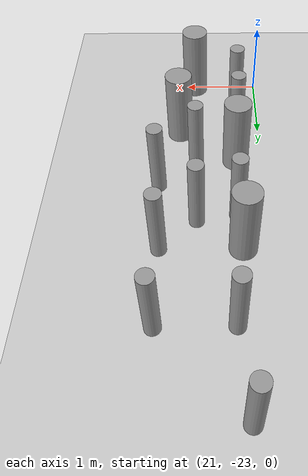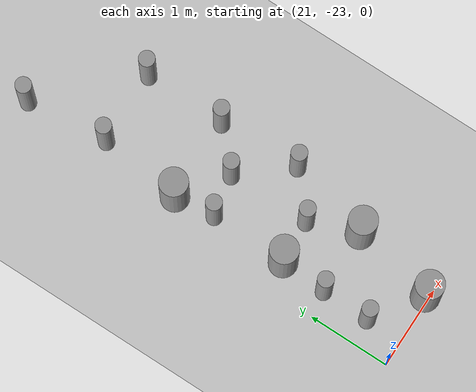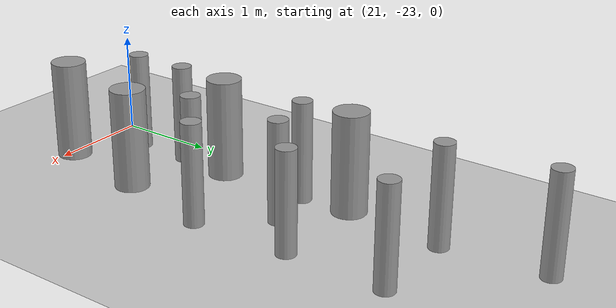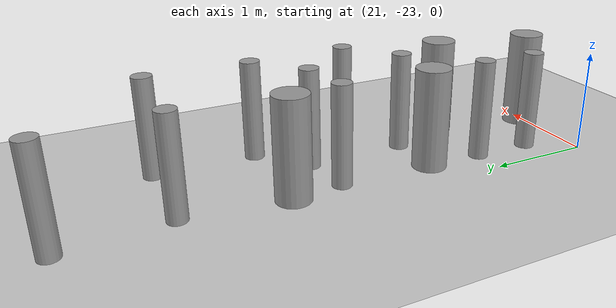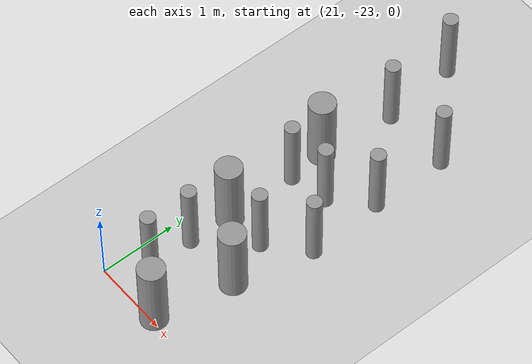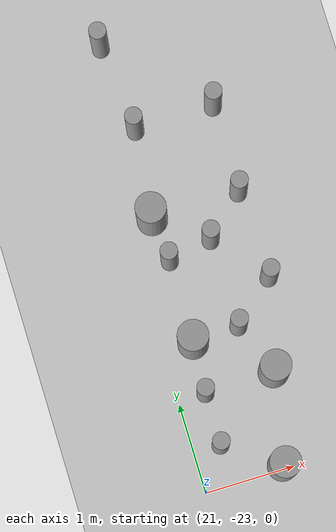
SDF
<sdf version="1.6">
 <world name="default">
  <model name="ground_plane">
   <static>1</static>
   <link name="link">
    <collision name="collision">
     <geometry><plane><normal>0 0 1</normal><size>100 100</size></plane></geometry>
     <surface><friction><ode><mu>100</mu><mu2>50</mu2></ode></friction></surface>
    </collision>
    <visual name="visual">
     <cast_shadows>0</cast_shadows>
     <geometry><plane><normal>0 0 1</normal><size>100 100</size></plane></geometry>
     <material>
      <script><uri>file://media/materials/scripts/gazebo.material</uri><name>Gazebo/Grey</name></script>
     </material>
    </visual>
   </link>
  </model>
  <model name="cyl_wall_clone_clone_1_clone_1_clone_clone_clone_clone_1">
   <link name="link_0">
    <pose>-2.73893 -0.366465 0 0 -0 0</pose>
    <inertial>
     <mass>0.0374993</mass>
     <inertia>
      <ixx>0.00321281</ixx>
      <ixy>0</ixy>
      <ixz>0</ixz>
      <iyy>0.00321281</iyy>
      <iyz>0</iyz>
      <izz>0.000175774</izz>
     </inertia>
    </inertial>
    <visual name="visual">
     <geometry><cylinder><radius>0.0968661</radius><length>1</length></cylinder></geometry>
     <material>
      <lighting>1</lighting>
      <script><uri>file://media/materials/scripts/gazebo.material</uri><name>Gazebo/Grey</name></script>
      <ambient>0.3 0.3 0.3 1</ambient>
      <diffuse>0.7 0.7 0.7 1</diffuse>
      <specular>0.01 0.01 0.01 1</specular>
      <emissive>0 0 0 1</emissive>
     </material>
    </visual>
    <collision name="collision">
     <geometry><cylinder><radius>0.096866</radius><length>1</length></cylinder></geometry>
     <surface>
      <friction>
       <ode><mu>1</mu><mu2>1</mu2><fdir1>0 0 0</fdir1><slip1>0</slip1><slip2>0</slip2></ode>
       <torsional>
        <coefficient>1</coefficient>
        <patch_radius>0</patch_radius>
        <surface_radius>0</surface_radius>
        <use_patch_radius>1</use_patch_radius>
        <ode><slip>0</slip></ode>
       </torsional>
      </friction>
      <bounce><restitution_coefficient>0</restitution_coefficient><threshold>1e+06</threshold></bounce>
      <contact>
       <collide_without_contact>0</collide_without_contact>
       <collide_without_contact_bitmask>1</collide_without_contact_bitmask>
       <collide_bitmask>1</collide_bitmask>
       <ode>
        <soft_cfm>0</soft_cfm>
        <soft_erp>0.2</soft_erp>
        <kp>1e+13</kp>
        <kd>1</kd>
        <max_vel>0.01</max_vel>
        <min_depth>0</min_depth>
       </ode>
       <bullet>
        <split_impulse>1</split_impulse>
        <split_impulse_penetration_threshold>-0.01</split_impulse_penetration_threshold>
        <soft_cfm>0</soft_cfm>
        <soft_erp>0.2</soft_erp>
        <kp>1e+13</kp>
        <kd>1</kd>
       </bullet>
      </contact>
     </surface>
    </collision>
   </link>
   <link name="link_0_clone">
    <pose>-1.73893 0.61877 0 0 -0 0</pose>
    <inertial>
     <mass>0.0374993</mass>
     <inertia>
      <ixx>0.00321281</ixx>
      <ixy>0</ixy>
      <ixz>0</ixz>
      <iyy>0.00321281</iyy>
      <iyz>0</iyz>
      <izz>0.000175774</izz>
     </inertia>
    </inertial>
    <visual name="visual">
     <geometry><cylinder><radius>0.0968661</radius><length>1</length></cylinder></geometry>
     <material>
      <lighting>1</lighting>
      <script><uri>file://media/materials/scripts/gazebo.material</uri><name>Gazebo/Grey</name></script>
      <ambient>0.3 0.3 0.3 1</ambient>
      <diffuse>0.7 0.7 0.7 1</diffuse>
      <specular>0.01 0.01 0.01 1</specular>
      <emissive>0 0 0 1</emissive>
      <shader type="pixel"/>
     </material>
    </visual>
    <collision name="collision">
     <geometry><cylinder><radius>0.096866</radius><length>1</length></cylinder></geometry>
     <surface>
      <friction>
       <ode><mu>1</mu><mu2>1</mu2><fdir1>0 0 0</fdir1><slip1>0</slip1><slip2>0</slip2></ode>
       <torsional>
        <coefficient>1</coefficient>
        <patch_radius>0</patch_radius>
        <surface_radius>0</surface_radius>
        <use_patch_radius>1</use_patch_radius>
        <ode><slip>0</slip></ode>
       </torsional>
      </friction>
      <bounce><restitution_coefficient>0</restitution_coefficient><threshold>1e+06</threshold></bounce>
      <contact>
       <collide_without_contact>0</collide_without_contact>
       <collide_without_contact_bitmask>1</collide_without_contact_bitmask>
       <collide_bitmask>1</collide_bitmask>
       <ode>
        <soft_cfm>0</soft_cfm>
        <soft_erp>0.2</soft_erp>
        <kp>1e+13</kp>
        <kd>1</kd>
        <max_vel>0.01</max_vel>
        <min_depth>0</min_depth>
       </ode>
       <bullet>
        <split_impulse>1</split_impulse>
        <split_impulse_penetration_threshold>-0.01</split_impulse_penetration_threshold>
        <soft_cfm>0</soft_cfm>
        <soft_erp>0.2</soft_erp>
        <kp>1e+13</kp>
        <kd>1</kd>
       </bullet>
      </contact>
     </surface>
    </collision>
   </link>
   <link name="link_0_clone_clone">
    <pose>-0.327073 0.143919 0 0 -0 0</pose>
    <inertial>
     <mass>0.0374993</mass>
     <inertia>
      <ixx>0.00321281</ixx>
      <ixy>0</ixy>
      <ixz>0</ixz>
      <iyy>0.00321281</iyy>
      <iyz>0</iyz>
      <izz>0.000175774</izz>
     </inertia>
    </inertial>
    <visual name="visual">
     <geometry><cylinder><radius>0.0968661</radius><length>1</length></cylinder></geometry>
     <material>
      <lighting>1</lighting>
      <script><uri>file://media/materials/scripts/gazebo.material</uri><name>Gazebo/Grey</name></script>
      <ambient>0.3 0.3 0.3 1</ambient>
      <diffuse>0.7 0.7 0.7 1</diffuse>
      <specular>0.01 0.01 0.01 1</specular>
      <emissive>0 0 0 1</emissive>
      <shader type="pixel"/>
     </material>
    </visual>
    <collision name="collision">
     <geometry><cylinder><radius>0.096866</radius><length>1</length></cylinder></geometry>
     <surface>
      <friction>
       <ode><mu>1</mu><mu2>1</mu2><fdir1>0 0 0</fdir1><slip1>0</slip1><slip2>0</slip2></ode>
       <torsional>
        <coefficient>1</coefficient>
        <patch_radius>0</patch_radius>
        <surface_radius>0</surface_radius>
        <use_patch_radius>1</use_patch_radius>
        <ode><slip>0</slip></ode>
       </torsional>
      </friction>
      <bounce><restitution_coefficient>0</restitution_coefficient><threshold>1e+06</threshold></bounce>
      <contact>
       <collide_without_contact>0</collide_without_contact>
       <collide_without_contact_bitmask>1</collide_without_contact_bitmask>
       <collide_bitmask>1</collide_bitmask>
       <ode>
        <soft_cfm>0</soft_cfm>
        <soft_erp>0.2</soft_erp>
        <kp>1e+13</kp>
        <kd>1</kd>
        <max_vel>0.01</max_vel>
        <min_depth>0</min_depth>
       </ode>
       <bullet>
        <split_impulse>1</split_impulse>
        <split_impulse_penetration_threshold>-0.01</split_impulse_penetration_threshold>
        <soft_cfm>0</soft_cfm>
        <soft_erp>0.2</soft_erp>
        <kp>1e+13</kp>
        <kd>1</kd>
       </bullet>
      </contact>
     </surface>
    </collision>
   </link>
   <link name="link_0_clone_clone_0">
    <pose>1.26107 -0.419359 0 0 -0 0</pose>
    <inertial>
     <mass>0.0374993</mass>
     <inertia>
      <ixx>0.00321281</ixx>
      <ixy>0</ixy>
      <ixz>0</ixz>
      <iyy>0.00321281</iyy>
      <iyz>0</iyz>
      <izz>0.000175774</izz>
     </inertia>
    </inertial>
    <visual name="visual">
     <geometry><cylinder><radius>0.0968661</radius><length>1</length></cylinder></geometry>
     <material>
      <lighting>1</lighting>
      <script><uri>file://media/materials/scripts/gazebo.material</uri><name>Gazebo/Grey</name></script>
      <ambient>0.3 0.3 0.3 1</ambient>
      <diffuse>0.7 0.7 0.7 1</diffuse>
      <specular>0.01 0.01 0.01 1</specular>
      <emissive>0 0 0 1</emissive>
      <shader type="pixel"/>
     </material>
    </visual>
    <collision name="collision">
     <geometry><cylinder><radius>0.096866</radius><length>1</length></cylinder></geometry>
     <surface>
      <friction>
       <ode><mu>1</mu><mu2>1</mu2><fdir1>0 0 0</fdir1><slip1>0</slip1><slip2>0</slip2></ode>
       <torsional>
        <coefficient>1</coefficient>
        <patch_radius>0</patch_radius>
        <surface_radius>0</surface_radius>
        <use_patch_radius>1</use_patch_radius>
        <ode><slip>0</slip></ode>
       </torsional>
      </friction>
      <bounce><restitution_coefficient>0</restitution_coefficient><threshold>1e+06</threshold></bounce>
      <contact>
       <collide_without_contact>0</collide_without_contact>
       <collide_without_contact_bitmask>1</collide_without_contact_bitmask>
       <collide_bitmask>1</collide_bitmask>
       <ode>
        <soft_cfm>0</soft_cfm>
        <soft_erp>0.2</soft_erp>
        <kp>1e+13</kp>
        <kd>1</kd>
        <max_vel>0.01</max_vel>
        <min_depth>0</min_depth>
       </ode>
       <bullet>
        <split_impulse>1</split_impulse>
        <split_impulse_penetration_threshold>-0.01</split_impulse_penetration_threshold>
        <soft_cfm>0</soft_cfm>
        <soft_erp>0.2</soft_erp>
        <kp>1e+13</kp>
        <kd>1</kd>
       </bullet>
      </contact>
     </surface>
    </collision>
   </link>
   <link name="link_0_clone_clone_1">
    <pose>-1.73893 -0.277168 0 0 -0 0</pose>
    <inertial>
     <mass>0.0374993</mass>
     <inertia>
      <ixx>0.00321281</ixx>
      <ixy>0</ixy>
      <ixz>0</ixz>
      <iyy>0.00321281</iyy>
      <iyz>0</iyz>
      <izz>0.000175774</izz>
     </inertia>
    </inertial>
    <visual name="visual">
     <geometry><cylinder><radius>0.0968661</radius><length>1</length></cylinder></geometry>
     <material>
      <lighting>1</lighting>
      <script><uri>file://media/materials/scripts/gazebo.material</uri><name>Gazebo/Grey</name></script>
      <ambient>0.3 0.3 0.3 1</ambient>
      <diffuse>0.7 0.7 0.7 1</diffuse>
      <specular>0.01 0.01 0.01 1</specular>
      <emissive>0 0 0 1</emissive>
      <shader type="pixel"/>
     </material>
    </visual>
    <collision name="collision">
     <geometry><cylinder><radius>0.096866</radius><length>1</length></cylinder></geometry>
     <surface>
      <friction>
       <ode><mu>1</mu><mu2>1</mu2><fdir1>0 0 0</fdir1><slip1>0</slip1><slip2>0</slip2></ode>
       <torsional>
        <coefficient>1</coefficient>
        <patch_radius>0</patch_radius>
        <surface_radius>0</surface_radius>
        <use_patch_radius>1</use_patch_radius>
        <ode><slip>0</slip></ode>
       </torsional>
      </friction>
      <bounce><restitution_coefficient>0</restitution_coefficient><threshold>1e+06</threshold></bounce>
      <contact>
       <collide_without_contact>0</collide_without_contact>
       <collide_without_contact_bitmask>1</collide_without_contact_bitmask>
       <collide_bitmask>1</collide_bitmask>
       <ode>
        <soft_cfm>0</soft_cfm>
        <soft_erp>0.2</soft_erp>
        <kp>1e+13</kp>
        <kd>1</kd>
        <max_vel>0.01</max_vel>
        <min_depth>0</min_depth>
       </ode>
       <bullet>
        <split_impulse>1</split_impulse>
        <split_impulse_penetration_threshold>-0.01</split_impulse_penetration_threshold>
        <soft_cfm>0</soft_cfm>
        <soft_erp>0.2</soft_erp>
        <kp>1e+13</kp>
        <kd>1</kd>
       </bullet>
      </contact>
     </surface>
    </collision>
   </link>
   <link name="link_0_clone_clone_2">
    <pose>-0.738934 0.593961 0 0 -0 0</pose>
    <inertial>
     <mass>0.0374993</mass>
     <inertia>
      <ixx>0.00321281</ixx>
      <ixy>0</ixy>
      <ixz>0</ixz>
      <iyy>0.00321281</iyy>
      <iyz>0</iyz>
      <izz>0.000175774</izz>
     </inertia>
    </inertial>
    <visual name="visual">
     <geometry><cylinder><radius>0.0968661</radius><length>1</length></cylinder></geometry>
     <material>
      <lighting>1</lighting>
      <script><uri>file://media/materials/scripts/gazebo.material</uri><name>Gazebo/Grey</name></script>
      <ambient>0.3 0.3 0.3 1</ambient>
      <diffuse>0.7 0.7 0.7 1</diffuse>
      <specular>0.01 0.01 0.01 1</specular>
      <emissive>0 0 0 1</emissive>
      <shader type="pixel"/>
     </material>
    </visual>
    <collision name="collision">
     <geometry><cylinder><radius>0.096866</radius><length>1</length></cylinder></geometry>
     <surface>
      <friction>
       <ode><mu>1</mu><mu2>1</mu2><fdir1>0 0 0</fdir1><slip1>0</slip1><slip2>0</slip2></ode>
       <torsional>
        <coefficient>1</coefficient>
        <patch_radius>0</patch_radius>
        <surface_radius>0</surface_radius>
        <use_patch_radius>1</use_patch_radius>
        <ode><slip>0</slip></ode>
       </torsional>
      </friction>
      <bounce><restitution_coefficient>0</restitution_coefficient><threshold>1e+06</threshold></bounce>
      <contact>
       <collide_without_contact>0</collide_without_contact>
       <collide_without_contact_bitmask>1</collide_without_contact_bitmask>
       <collide_bitmask>1</collide_bitmask>
       <ode>
        <soft_cfm>0</soft_cfm>
        <soft_erp>0.2</soft_erp>
        <kp>1e+13</kp>
        <kd>1</kd>
        <max_vel>0.01</max_vel>
        <min_depth>0</min_depth>
       </ode>
       <bullet>
        <split_impulse>1</split_impulse>
        <split_impulse_penetration_threshold>-0.01</split_impulse_penetration_threshold>
        <soft_cfm>0</soft_cfm>
        <soft_erp>0.2</soft_erp>
        <kp>1e+13</kp>
        <kd>1</kd>
       </bullet>
      </contact>
     </surface>
    </collision>
   </link>
   <link name="link_0_clone_clone_3">
    <pose>0.261066 0.624849 0 0 -0 0</pose>
    <inertial>
     <mass>0.0374993</mass>
     <inertia>
      <ixx>0.00321281</ixx>
      <ixy>0</ixy>
      <ixz>0</ixz>
      <iyy>0.00321281</iyy>
      <iyz>0</iyz>
      <izz>0.000175774</izz>
     </inertia>
    </inertial>
    <visual name="visual">
     <geometry><cylinder><radius>0.0968661</radius><length>1</length></cylinder></geometry>
     <material>
      <lighting>1</lighting>
      <script><uri>file://media/materials/scripts/gazebo.material</uri><name>Gazebo/Grey</name></script>
      <ambient>0.3 0.3 0.3 1</ambient>
      <diffuse>0.7 0.7 0.7 1</diffuse>
      <specular>0.01 0.01 0.01 1</specular>
      <emissive>0 0 0 1</emissive>
      <shader type="pixel"/>
     </material>
    </visual>
    <collision name="collision">
     <geometry><cylinder><radius>0.096866</radius><length>1</length></cylinder></geometry>
     <surface>
      <friction>
       <ode><mu>1</mu><mu2>1</mu2><fdir1>0 0 0</fdir1><slip1>0</slip1><slip2>0</slip2></ode>
       <torsional>
        <coefficient>1</coefficient>
        <patch_radius>0</patch_radius>
        <surface_radius>0</surface_radius>
        <use_patch_radius>1</use_patch_radius>
        <ode><slip>0</slip></ode>
       </torsional>
      </friction>
      <bounce><restitution_coefficient>0</restitution_coefficient><threshold>1e+06</threshold></bounce>
      <contact>
       <collide_without_contact>0</collide_without_contact>
       <collide_without_contact_bitmask>1</collide_without_contact_bitmask>
       <collide_bitmask>1</collide_bitmask>
       <ode>
        <soft_cfm>0</soft_cfm>
        <soft_erp>0.2</soft_erp>
        <kp>1e+13</kp>
        <kd>1</kd>
        <max_vel>0.01</max_vel>
        <min_depth>0</min_depth>
       </ode>
       <bullet>
        <split_impulse>1</split_impulse>
        <split_impulse_penetration_threshold>-0.01</split_impulse_penetration_threshold>
        <soft_cfm>0</soft_cfm>
        <soft_erp>0.2</soft_erp>
        <kp>1e+13</kp>
        <kd>1</kd>
       </bullet>
      </contact>
     </surface>
    </collision>
   </link>
   <link name="link_0_clone_clone_4">
    <pose>-0.239049 -0.353105 0 0 -0 0</pose>
    <inertial>
     <mass>0.0374993</mass>
     <inertia>
      <ixx>0.00321281</ixx>
      <ixy>0</ixy>
      <ixz>0</ixz>
      <iyy>0.00321281</iyy>
      <iyz>0</iyz>
      <izz>0.000175774</izz>
     </inertia>
    </inertial>
    <visual name="visual">
     <geometry><cylinder><radius>0.0968661</radius><length>1</length></cylinder></geometry>
     <material>
      <lighting>1</lighting>
      <script><uri>file://media/materials/scripts/gazebo.material</uri><name>Gazebo/Grey</name></script>
      <ambient>0.3 0.3 0.3 1</ambient>
      <diffuse>0.7 0.7 0.7 1</diffuse>
      <specular>0.01 0.01 0.01 1</specular>
      <emissive>0 0 0 1</emissive>
      <shader type="pixel"/>
     </material>
    </visual>
    <collision name="collision">
     <geometry><cylinder><radius>0.096866</radius><length>1</length></cylinder></geometry>
     <surface>
      <friction>
       <ode><mu>1</mu><mu2>1</mu2><fdir1>0 0 0</fdir1><slip1>0</slip1><slip2>0</slip2></ode>
       <torsional>
        <coefficient>1</coefficient>
        <patch_radius>0</patch_radius>
        <surface_radius>0</surface_radius>
        <use_patch_radius>1</use_patch_radius>
        <ode><slip>0</slip></ode>
       </torsional>
      </friction>
      <bounce><restitution_coefficient>0</restitution_coefficient><threshold>1e+06</threshold></bounce>
      <contact>
       <collide_without_contact>0</collide_without_contact>
       <collide_without_contact_bitmask>1</collide_without_contact_bitmask>
       <collide_bitmask>1</collide_bitmask>
       <ode>
        <soft_cfm>0</soft_cfm>
        <soft_erp>0.2</soft_erp>
        <kp>1e+13</kp>
        <kd>1</kd>
        <max_vel>0.01</max_vel>
        <min_depth>0</min_depth>
       </ode>
       <bullet>
        <split_impulse>1</split_impulse>
        <split_impulse_penetration_threshold>-0.01</split_impulse_penetration_threshold>
        <soft_cfm>0</soft_cfm>
        <soft_erp>0.2</soft_erp>
        <kp>1e+13</kp>
        <kd>1</kd>
       </bullet>
      </contact>
     </surface>
    </collision>
   </link>
   <link name="link_0_clone_clone_5">
    <pose>0.672792 0.143919 0 0 -0 0</pose>
    <inertial>
     <mass>0.0374993</mass>
     <inertia>
      <ixx>0.00321281</ixx>
      <ixy>0</ixy>
      <ixz>0</ixz>
      <iyy>0.00321281</iyy>
      <iyz>0</iyz>
      <izz>0.000175774</izz>
     </inertia>
    </inertial>
    <visual name="visual">
     <geometry><cylinder><radius>0.0968661</radius><length>1</length></cylinder></geometry>
     <material>
      <lighting>1</lighting>
      <script><uri>file://media/materials/scripts/gazebo.material</uri><name>Gazebo/Grey</name></script>
      <ambient>0.3 0.3 0.3 1</ambient>
      <diffuse>0.7 0.7 0.7 1</diffuse>
      <specular>0.01 0.01 0.01 1</specular>
      <emissive>0 0 0 1</emissive>
      <shader type="pixel"/>
     </material>
    </visual>
    <collision name="collision">
     <geometry><cylinder><radius>0.096866</radius><length>1</length></cylinder></geometry>
     <surface>
      <friction>
       <ode><mu>1</mu><mu2>1</mu2><fdir1>0 0 0</fdir1><slip1>0</slip1><slip2>0</slip2></ode>
       <torsional>
        <coefficient>1</coefficient>
        <patch_radius>0</patch_radius>
        <surface_radius>0</surface_radius>
        <use_patch_radius>1</use_patch_radius>
        <ode><slip>0</slip></ode>
       </torsional>
      </friction>
      <bounce><restitution_coefficient>0</restitution_coefficient><threshold>1e+06</threshold></bounce>
      <contact>
       <collide_without_contact>0</collide_without_contact>
       <collide_without_contact_bitmask>1</collide_without_contact_bitmask>
       <collide_bitmask>1</collide_bitmask>
       <ode>
        <soft_cfm>0</soft_cfm>
        <soft_erp>0.2</soft_erp>
        <kp>1e+13</kp>
        <kd>1</kd>
        <max_vel>0.01</max_vel>
        <min_depth>0</min_depth>
       </ode>
       <bullet>
        <split_impulse>1</split_impulse>
        <split_impulse_penetration_threshold>-0.01</split_impulse_penetration_threshold>
        <soft_cfm>0</soft_cfm>
        <soft_erp>0.2</soft_erp>
        <kp>1e+13</kp>
        <kd>1</kd>
       </bullet>
      </contact>
     </surface>
    </collision>
   </link>
   <link name="link_0_clone_clone_6">
    <pose>1.84596 -0.433423 0 0 -0 0</pose>
    <inertial>
     <mass>0.0374993</mass>
     <inertia>
      <ixx>0.00321281</ixx>
      <ixy>0</ixy>
      <ixz>0</ixz>
      <iyy>0.00321281</iyy>
      <iyz>0</iyz>
      <izz>0.000175774</izz>
     </inertia>
    </inertial>
    <visual name="visual">
     <geometry><cylinder><radius>0.0968661</radius><length>1</length></cylinder></geometry>
     <material>
      <lighting>1</lighting>
      <script><uri>file://media/materials/scripts/gazebo.material</uri><name>Gazebo/Grey</name></script>
      <ambient>0.3 0.3 0.3 1</ambient>
      <diffuse>0.7 0.7 0.7 1</diffuse>
      <specular>0.01 0.01 0.01 1</specular>
      <emissive>0 0 0 1</emissive>
      <shader type="pixel"/>
     </material>
    </visual>
    <collision name="collision">
     <geometry><cylinder><radius>0.096866</radius><length>1</length></cylinder></geometry>
     <surface>
      <friction>
       <ode><mu>1</mu><mu2>1</mu2><fdir1>0 0 0</fdir1><slip1>0</slip1><slip2>0</slip2></ode>
       <torsional>
        <coefficient>1</coefficient>
        <patch_radius>0</patch_radius>
        <surface_radius>0</surface_radius>
        <use_patch_radius>1</use_patch_radius>
        <ode><slip>0</slip></ode>
       </torsional>
      </friction>
      <bounce><restitution_coefficient>0</restitution_coefficient><threshold>1e+06</threshold></bounce>
      <contact>
       <collide_without_contact>0</collide_without_contact>
       <collide_without_contact_bitmask>1</collide_without_contact_bitmask>
       <collide_bitmask>1</collide_bitmask>
       <ode>
        <soft_cfm>0</soft_cfm>
        <soft_erp>0.2</soft_erp>
        <kp>1e+13</kp>
        <kd>1</kd>
        <max_vel>0.01</max_vel>
        <min_depth>0</min_depth>
       </ode>
       <bullet>
        <split_impulse>1</split_impulse>
        <split_impulse_penetration_threshold>-0.01</split_impulse_penetration_threshold>
        <soft_cfm>0</soft_cfm>
        <soft_erp>0.2</soft_erp>
        <kp>1e+13</kp>
        <kd>1</kd>
       </bullet>
      </contact>
     </surface>
    </collision>
   </link>
   <link name="link_1">
    <pose>-0.738934 -0.397931 0 0 -0 0</pose>
    <inertial>
     <mass>0.117398</mass>
     <inertia>
      <ixx>0.0106445</ixx>
      <ixy>0</ixy>
      <ixz>0</ixz>
      <iyy>0.0106445</iyy>
      <iyz>0</iyz>
      <izz>0.00172278</izz>
     </inertia>
    </inertial>
    <visual name="visual">
     <geometry><cylinder><radius>0.171317</radius><length>1</length></cylinder></geometry>
     <material>
      <lighting>1</lighting>
      <script><uri>file://media/materials/scripts/gazebo.material</uri><name>Gazebo/Grey</name></script>
      <ambient>0.3 0.3 0.3 1</ambient>
      <diffuse>0.7 0.7 0.7 1</diffuse>
      <specular>0.01 0.01 0.01 1</specular>
      <emissive>0 0 0 1</emissive>
     </material>
    </visual>
    <collision name="collision">
     <geometry><cylinder><radius>0.171317</radius><length>1</length></cylinder></geometry>
     <surface>
      <friction>
       <ode><mu>1</mu><mu2>1</mu2><fdir1>0 0 0</fdir1><slip1>0</slip1><slip2>0</slip2></ode>
       <torsional>
        <coefficient>1</coefficient>
        <patch_radius>0</patch_radius>
        <surface_radius>0</surface_radius>
        <use_patch_radius>1</use_patch_radius>
        <ode><slip>0</slip></ode>
       </torsional>
      </friction>
      <bounce><restitution_coefficient>0</restitution_coefficient><threshold>1e+06</threshold></bounce>
      <contact>
       <collide_without_contact>0</collide_without_contact>
       <collide_without_contact_bitmask>1</collide_without_contact_bitmask>
       <collide_bitmask>1</collide_bitmask>
       <ode>
        <soft_cfm>0</soft_cfm>
        <soft_erp>0.2</soft_erp>
        <kp>1e+13</kp>
        <kd>1</kd>
        <max_vel>0.01</max_vel>
        <min_depth>0</min_depth>
       </ode>
       <bullet>
        <split_impulse>1</split_impulse>
        <split_impulse_penetration_threshold>-0.01</split_impulse_penetration_threshold>
        <soft_cfm>0</soft_cfm>
        <soft_erp>0.2</soft_erp>
        <kp>1e+13</kp>
        <kd>1</kd>
       </bullet>
      </contact>
     </surface>
    </collision>
   </link>
   <link name="link_1_clone">
    <pose>0.697784 -0.380861 0 0 -0 0</pose>
    <inertial>
     <mass>0.117398</mass>
     <inertia>
      <ixx>0.0106445</ixx>
      <ixy>0</ixy>
      <ixz>0</ixz>
      <iyy>0.0106445</iyy>
      <iyz>0</iyz>
      <izz>0.00172278</izz>
     </inertia>
    </inertial>
    <visual name="visual">
     <geometry><cylinder><radius>0.171317</radius><length>1</length></cylinder></geometry>
     <material>
      <lighting>1</lighting>
      <script><uri>file://media/materials/scripts/gazebo.material</uri><name>Gazebo/Grey</name></script>
      <ambient>0.3 0.3 0.3 1</ambient>
      <diffuse>0.7 0.7 0.7 1</diffuse>
      <specular>0.01 0.01 0.01 1</specular>
      <emissive>0 0 0 1</emissive>
      <shader type="pixel"/>
     </material>
    </visual>
    <collision name="collision">
     <geometry><cylinder><radius>0.171317</radius><length>1</length></cylinder></geometry>
     <surface>
      <friction>
       <ode><mu>1</mu><mu2>1</mu2><fdir1>0 0 0</fdir1><slip1>0</slip1><slip2>0</slip2></ode>
       <torsional>
        <coefficient>1</coefficient>
        <patch_radius>0</patch_radius>
        <surface_radius>0</surface_radius>
        <use_patch_radius>1</use_patch_radius>
        <ode><slip>0</slip></ode>
       </torsional>
      </friction>
      <bounce><restitution_coefficient>0</restitution_coefficient><threshold>1e+06</threshold></bounce>
      <contact>
       <collide_without_contact>0</collide_without_contact>
       <collide_without_contact_bitmask>1</collide_without_contact_bitmask>
       <collide_bitmask>1</collide_bitmask>
       <ode>
        <soft_cfm>0</soft_cfm>
        <soft_erp>0.2</soft_erp>
        <kp>1e+13</kp>
        <kd>1</kd>
        <max_vel>0.01</max_vel>
        <min_depth>0</min_depth>
       </ode>
       <bullet>
        <split_impulse>1</split_impulse>
        <split_impulse_penetration_threshold>-0.01</split_impulse_penetration_threshold>
        <soft_cfm>0</soft_cfm>
        <soft_erp>0.2</soft_erp>
        <kp>1e+13</kp>
        <kd>1</kd>
       </bullet>
      </contact>
     </surface>
    </collision>
   </link>
   <link name="link_1_clone_0">
    <pose>1.26107 0.358974 0 0 -0 0</pose>
    <inertial>
     <mass>0.117398</mass>
     <inertia>
      <ixx>0.0106445</ixx>
      <ixy>0</ixy>
      <ixz>0</ixz>
      <iyy>0.0106445</iyy>
      <iyz>0</iyz>
      <izz>0.00172278</izz>
     </inertia>
    </inertial>
    <visual name="visual">
     <geometry><cylinder><radius>0.171317</radius><length>1</length></cylinder></geometry>
     <material>
      <lighting>1</lighting>
      <script><uri>file://media/materials/scripts/gazebo.material</uri><name>Gazebo/Grey</name></script>
      <ambient>0.3 0.3 0.3 1</ambient>
      <diffuse>0.7 0.7 0.7 1</diffuse>
      <specular>0.01 0.01 0.01 1</specular>
      <emissive>0 0 0 1</emissive>
      <shader type="pixel"/>
     </material>
    </visual>
    <collision name="collision">
     <geometry><cylinder><radius>0.171317</radius><length>1</length></cylinder></geometry>
     <surface>
      <friction>
       <ode><mu>1</mu><mu2>1</mu2><fdir1>0 0 0</fdir1><slip1>0</slip1><slip2>0</slip2></ode>
       <torsional>
        <coefficient>1</coefficient>
        <patch_radius>0</patch_radius>
        <surface_radius>0</surface_radius>
        <use_patch_radius>1</use_patch_radius>
        <ode><slip>0</slip></ode>
       </torsional>
      </friction>
      <bounce><restitution_coefficient>0</restitution_coefficient><threshold>1e+06</threshold></bounce>
      <contact>
       <collide_without_contact>0</collide_without_contact>
       <collide_without_contact_bitmask>1</collide_without_contact_bitmask>
       <collide_bitmask>1</collide_bitmask>
       <ode>
        <soft_cfm>0</soft_cfm>
        <soft_erp>0.2</soft_erp>
        <kp>1e+13</kp>
        <kd>1</kd>
        <max_vel>0.01</max_vel>
        <min_depth>0</min_depth>
       </ode>
       <bullet>
        <split_impulse>1</split_impulse>
        <split_impulse_penetration_threshold>-0.01</split_impulse_penetration_threshold>
        <soft_cfm>0</soft_cfm>
        <soft_erp>0.2</soft_erp>
        <kp>1e+13</kp>
        <kd>1</kd>
       </bullet>
      </contact>
     </surface>
    </collision>
   </link>
   <link name="link_1_clone_1">
    <pose>2.26107 0.143919 0 0 -0 0</pose>
    <inertial>
     <mass>0.117398</mass>
     <inertia>
      <ixx>0.0106445</ixx>
      <ixy>0</ixy>
      <ixz>0</ixz>
      <iyy>0.0106445</iyy>
      <iyz>0</iyz>
      <izz>0.00172278</izz>
     </inertia>
    </inertial>
    <visual name="visual">
     <geometry><cylinder><radius>0.171317</radius><length>1</length></cylinder></geometry>
     <material>
      <lighting>1</lighting>
      <script><uri>file://media/materials/scripts/gazebo.material</uri><name>Gazebo/Grey</name></script>
      <ambient>0.3 0.3 0.3 1</ambient>
      <diffuse>0.7 0.7 0.7 1</diffuse>
      <specular>0.01 0.01 0.01 1</specular>
      <emissive>0 0 0 1</emissive>
      <shader type="pixel"/>
     </material>
    </visual>
    <collision name="collision">
     <geometry><cylinder><radius>0.171317</radius><length>1</length></cylinder></geometry>
     <surface>
      <friction>
       <ode><mu>1</mu><mu2>1</mu2><fdir1>0 0 0</fdir1><slip1>0</slip1><slip2>0</slip2></ode>
       <torsional>
        <coefficient>1</coefficient>
        <patch_radius>0</patch_radius>
        <surface_radius>0</surface_radius>
        <use_patch_radius>1</use_patch_radius>
        <ode><slip>0</slip></ode>
       </torsional>
      </friction>
      <bounce><restitution_coefficient>0</restitution_coefficient><threshold>1e+06</threshold></bounce>
      <contact>
       <collide_without_contact>0</collide_without_contact>
       <collide_without_contact_bitmask>1</collide_without_contact_bitmask>
       <collide_bitmask>1</collide_bitmask>
       <ode>
        <soft_cfm>0</soft_cfm>
        <soft_erp>0.2</soft_erp>
        <kp>1e+13</kp>
        <kd>1</kd>
        <max_vel>0.01</max_vel>
        <min_depth>0</min_depth>
       </ode>
       <bullet>
        <split_impulse>1</split_impulse>
        <split_impulse_penetration_threshold>-0.01</split_impulse_penetration_threshold>
        <soft_cfm>0</soft_cfm>
        <soft_erp>0.2</soft_erp>
        <kp>1e+13</kp>
        <kd>1</kd>
       </bullet>
      </contact>
     </surface>
    </collision>
   </link>
   <static>1</static>
   <pose>21.712 -20.6978 0.5 0 0 -1.55814</pose>
  </model>
 </world>
</sdf>
